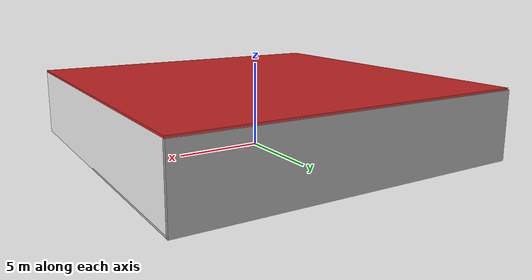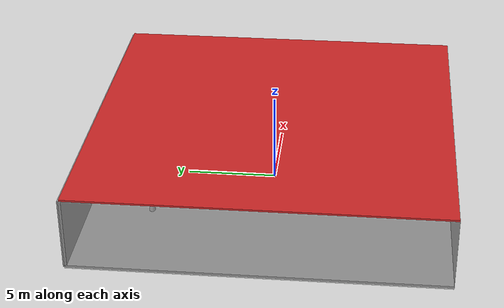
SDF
<sdf version="1.4">
 <world name="default">
  <physics type="ode">
   <max_step_size>0.001</max_step_size>
   <real_time_factor>1</real_time_factor>
   <real_time_update_rate>1000</real_time_update_rate>
   <gravity>0 0 -9.8</gravity>
  </physics>
  <scene><ambient>0.4 0.4 0.4 1</ambient><background>0.7 0.7 0.7 1</background><shadows>1</shadows></scene>
  <model name="Surrounding">
   <static>1</static>
   <link name="Ceiling">
    <collision name="Ceiling_Collision"><geometry><box><size>20 20 0.1</size></box></geometry></collision>
    <visual name="Ceiling_Visual">
     <geometry><box><size>20 20 0.1</size></box></geometry>
     <material>
      <script><uri>file://media/materials/scripts/gazebo.material</uri><name>Gazebo/Red</name></script>
     </material>
    </visual>
    <pose>0 0 4.05 0 0 0</pose>
   </link>
   <link name="Wall_South">
    <collision name="Wall_South_Collision">
     <geometry><box><size>20 0 4</size></box></geometry>
     <pose>0 0 2 0 -0 0</pose>
    </collision>
    <visual name="Wall_South_Visual">
     <pose>0 0 2 0 -0 0</pose>
     <geometry><box><size>20 0 4</size></box></geometry>
     <material>
      <script><uri>file://media/materials/scripts/gazebo.material</uri><name>Gazebo/PioneerBody</name></script>
     </material>
    </visual>
    <velocity_decay><linear>0</linear><angular>0</angular></velocity_decay>
    <pose>0 -10 0 0 -0 0</pose>
   </link>
   <link name="Wall_East">
    <collision name="Wall_21_Collision">
     <geometry><box><size>20 0 4</size></box></geometry>
     <pose>0 0 2 0 -0 0</pose>
    </collision>
    <visual name="Wall_21_Visual">
     <pose>0 0 2 0 -0 0</pose>
     <geometry><box><size>20 0 4</size></box></geometry>
     <material>
      <script><uri>file://media/materials/scripts/gazebo.material</uri><name>Gazebo/WhiteGlow</name></script>
     </material>
    </visual>
    <velocity_decay><linear>0</linear><angular>0</angular></velocity_decay>
    <pose>10 0 0 0 -0 1.5708</pose>
   </link>
   <link name="Wall_North">
    <collision name="Wall_22_Collision">
     <geometry><box><size>20 0.2 4</size></box></geometry>
     <pose>0 0 2 0 -0 0</pose>
    </collision>
    <visual name="Wall_22_Visual">
     <pose>0 0 2 0 -0 0</pose>
     <geometry><box><size>20 0.2 4</size></box></geometry>
     <material>
      <script><uri>file://media/materials/scripts/gazebo.material</uri><name>Gazebo/Grey</name></script>
     </material>
    </visual>
    <velocity_decay><linear>0</linear><angular>0</angular></velocity_decay>
    <pose>0 10 0 0 -0 0</pose>
   </link>
   <link name="Wall_West">
    <collision name="Wall_23_Collision">
     <geometry><box><size>20 0.2 4</size></box></geometry>
     <pose>0 0 2 0 -0 0</pose>
    </collision>
    <visual name="Wall_23_Visual">
     <pose>0 0 2 0 -0 0</pose>
     <geometry><box><size>20 0.2 4</size></box></geometry>
     <material>
      <script><uri>file://media/materials/scripts/gazebo.material</uri><name>Gazebo/GreyTransparent</name></script>
     </material>
    </visual>
    <velocity_decay><linear>0</linear><angular>0</angular></velocity_decay>
    <pose>-10 0 0 0 0 -1.5708</pose>
   </link>
   <link name="Ground_link">
    <collision name="collision">
     <pose>0 0 .05 0 -0 0</pose>
     <geometry><box><size>20 20 0.1</size></box></geometry>
    </collision>
    <visual name="visual">
     <pose>0 0 .05 0 -0 0</pose>
     <geometry><box><size>20 20 0.1</size></box></geometry>
     <material>
      <script><uri>file://media/materials/scripts/gazebo.material</uri><name>Gazebo/PioneerBody</name></script>
     </material>
    </visual>
   </link>
   <static>1</static>
  </model>
  <spherical_coordinates>
   <surface_model>EARTH_WGS84</surface_model>
   <latitude_deg>0</latitude_deg>
   <longitude_deg>0</longitude_deg>
   <elevation>0</elevation>
   <heading_deg>0</heading_deg>
  </spherical_coordinates>
  <light name="lightball_0" type="diffuse">
   <diffuse>0.8 0.8 0.8 1</diffuse>
   <specular>0.2 0.2 0.2 1</specular>
   <attenuation>
    <range>100</range>
    <constant>0.7</constant>
    <linear>0.01</linear>
    <quadratic>0.001</quadratic>
   </attenuation>
   <direction>-0.5 0.1 -0.9</direction>
   <pose>-4.84863383443 -3.14383304733 3.62752129618 0 0 0</pose>
  </light>
  <light name="lightball_1" type="diffuse">
   <diffuse>0.8 0.8 0.8 1</diffuse>
   <specular>0.2 0.2 0.2 1</specular>
   <attenuation>
    <range>100</range>
    <constant>0.7</constant>
    <linear>0.01</linear>
    <quadratic>0.001</quadratic>
   </attenuation>
   <direction>-0.5 0.1 -0.9</direction>
   <pose>1.81046535225 -4.27649122936 3.14671038691 0 0 0</pose>
  </light>
  <light name="lightball_2" type="diffuse">
   <diffuse>0.8 0.8 0.8 1</diffuse>
   <specular>0.2 0.2 0.2 1</specular>
   <attenuation>
    <range>100</range>
    <constant>0.7</constant>
    <linear>0.01</linear>
    <quadratic>0.001</quadratic>
   </attenuation>
   <direction>-0.5 0.1 -0.9</direction>
   <pose>-0.644840490745 -9.23879488313 3.78253925402 0 0 0</pose>
  </light>
  <light name="lightball_3" type="diffuse">
   <diffuse>0.8 0.8 0.8 1</diffuse>
   <specular>0.2 0.2 0.2 1</specular>
   <attenuation>
    <range>100</range>
    <constant>0.7</constant>
    <linear>0.01</linear>
    <quadratic>0.001</quadratic>
   </attenuation>
   <direction>-0.5 0.1 -0.9</direction>
   <pose>6.60286401535 -3.81858660485 1.5987747214 0 0 0</pose>
  </light>
  <light name="lightball_4" type="diffuse">
   <diffuse>0.8 0.8 0.8 1</diffuse>
   <specular>0.2 0.2 0.2 1</specular>
   <attenuation>
    <range>100</range>
    <constant>0.7</constant>
    <linear>0.01</linear>
    <quadratic>0.001</quadratic>
   </attenuation>
   <direction>-0.5 0.1 -0.9</direction>
   <pose>-4.48472042271 -0.151958308089 3.03364091139 0 0 0</pose>
  </light>
  <light name="lightball_5" type="diffuse">
   <diffuse>0.8 0.8 0.8 1</diffuse>
   <specular>0.2 0.2 0.2 1</specular>
   <attenuation>
    <range>100</range>
    <constant>0.7</constant>
    <linear>0.01</linear>
    <quadratic>0.001</quadratic>
   </attenuation>
   <direction>-0.5 0.1 -0.9</direction>
   <pose>0.285181208203 8.08282110152 3.60542807016 0 0 0</pose>
  </light>
  <light name="lightball_6" type="diffuse">
   <diffuse>0.8 0.8 0.8 1</diffuse>
   <specular>0.2 0.2 0.2 1</specular>
   <attenuation>
    <range>100</range>
    <constant>0.7</constant>
    <linear>0.01</linear>
    <quadratic>0.001</quadratic>
   </attenuation>
   <direction>-0.5 0.1 -0.9</direction>
   <pose>3.45532674142 4.15218760553 0.995595973979 0 0 0</pose>
  </light>
  <light name="lightball_7" type="diffuse">
   <diffuse>0.8 0.8 0.8 1</diffuse>
   <specular>0.2 0.2 0.2 1</specular>
   <attenuation>
    <range>100</range>
    <constant>0.7</constant>
    <linear>0.01</linear>
    <quadratic>0.001</quadratic>
   </attenuation>
   <direction>-0.5 0.1 -0.9</direction>
   <pose>9.2925766268 -9.22850128831 3.43366715985 0 0 0</pose>
  </light>
  <light name="lightball_8" type="diffuse">
   <diffuse>0.8 0.8 0.8 1</diffuse>
   <specular>0.2 0.2 0.2 1</specular>
   <attenuation>
    <range>100</range>
    <constant>0.7</constant>
    <linear>0.01</linear>
    <quadratic>0.001</quadratic>
   </attenuation>
   <direction>-0.5 0.1 -0.9</direction>
   <pose>3.73458847782 9.78108026374 1.65768630191 0 0 0</pose>
  </light>
  <light name="lightball_9" type="diffuse">
   <diffuse>0.8 0.8 0.8 1</diffuse>
   <specular>0.2 0.2 0.2 1</specular>
   <attenuation>
    <range>100</range>
    <constant>0.7</constant>
    <linear>0.01</linear>
    <quadratic>0.001</quadratic>
   </attenuation>
   <direction>-0.5 0.1 -0.9</direction>
   <pose>0.910654305916 5.00832972308 1.99133416522 0 0 0</pose>
  </light>
  <light name="lightball_10" type="diffuse">
   <diffuse>0.8 0.8 0.8 1</diffuse>
   <specular>0.2 0.2 0.2 1</specular>
   <attenuation>
    <range>100</range>
    <constant>0.7</constant>
    <linear>0.01</linear>
    <quadratic>0.001</quadratic>
   </attenuation>
   <direction>-0.5 0.1 -0.9</direction>
   <pose>6.42941914402 -9.27077912173 3.58886697652 0 0 0</pose>
  </light>
  <include>
   <uri>model://construction_cone</uri>
   <pose>-4.39461740813 6.42306512165 0 0 0 1.97440966386</pose>
  </include>
  <include><uri>model://cabinet</uri><pose>4.85455530368 7.0430412981 0 0 0 0.296456195759</pose></include>
  <include><uri>model://cabinet</uri><pose>7.85124649658 -1.16731443764 0 0 0 2.21327410953</pose></include>
 </world>
</sdf>

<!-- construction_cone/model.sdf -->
<sdf version="1.5">
  <model name="Construction Cone">
    <link name="link">
      <collision name="collision">
        <geometry>
          <mesh>
            <scale>10 10 10</scale>
            <uri>file://isr-testbed/construction_cone/meshes/construction_cone.dae</uri>
          </mesh>
        </geometry>
      </collision>
      <visual name="visual">
        <geometry>
          <mesh>
            <scale>10 10 10</scale>
            <uri>file://isr-testbed/construction_cone/meshes/construction_cone.dae</uri>
          </mesh>
        </geometry>
      </visual>
    </link>
  </model>
</sdf>

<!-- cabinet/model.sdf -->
<sdf version="1.5">
  <model name="cabinet">
    <static>true</static>
    <link name="cabinet_bottom_plate">
      <inertial>
        <pose>0 0 -1 0 0 0</pose>
        <inertia>
          <ixx>2.050000</ixx>
          <ixy>0</ixy>
          <ixz>0</ixz>
          <iyy>2.050000</iyy>
          <iyz>0</iyz>
          <izz>2.050000</izz>
        </inertia>
        <mass>25.000000</mass>
      </inertial>
      <collision name="cabinet_bottom_plate_geom">
        <pose>0 0 0.010000 0 0 0</pose>
        <geometry>
          <box>
            <size>0.450000 0.450000 0.020000</size>
          </box>
        </geometry>
      </collision>
      <visual name="cabinet_bottom_plate_geom_visual">
        <pose>0 0 0.010000 0 0 0</pose>
        <geometry>
          <box>
            <size>0.450000 0.450000 0.020000</size>
          </box>
        </geometry>
        <material>
          <script>
            <uri>model://media/materials/scripts/gazebo.material</uri>
            <name>Gazebo/Wood</name>
          </script>
        </material>
      </visual>
      <collision name="cabinet_bottom_plate_geom_cabinet_back_plate">
        <pose>0.235000 0 0.510000 0 0 0</pose>
        <geometry>
          <box>
            <size>0.020000 0.450000 1.020000</size>
          </box>
        </geometry>
      </collision>
      <visual name="cabinet_bottom_plate_geom_cabinet_back_plate_visual">
        <pose>0.235000 0 0.510000 0 0 0</pose>
        <geometry>
          <box>
            <size>0.020000 0.450000 1.020000</size>
          </box>
        </geometry>
        <material>
          <script>
            <uri>model://media/materials/scripts/gazebo.material</uri>
            <name>Gazebo/Wood</name>
          </script>
        </material>
      </visual>
      <collision name="cabinet_bottom_plate_geom_cabinet_left_plate">
        <pose>0 0.235000 0.510000 0 0 0</pose>
        <geometry>
          <box>
            <size>0.450000 0.020000 1.020000</size>
          </box>
        </geometry>
      </collision>
      <visual name="cabinet_bottom_plate_geom_cabinet_left_plate_visual">
        <pose>0 0.235000 0.510000 0 0 0</pose>
        <geometry>
          <box>
            <size>0.450000 0.020000 1.020000</size>
          </box>
        </geometry>
        <material>
          <script>
            <uri>model://media/materials/scripts/gazebo.material</uri>
            <name>Gazebo/Wood</name>
          </script>
        </material>
      </visual>
      <collision name="cabinet_bottom_plate_geom_cabinet_middle_plate">
        <pose>0 0 0.510000 0 0 0</pose>
        <geometry>
          <box>
            <size>0.450000 0.450000 0.020000</size>
          </box>
        </geometry>
      </collision>
      <visual name="cabinet_bottom_plate_geom_cabinet_middle_plate_visual">
        <pose>0 0 0.510000 0 0 0</pose>
        <geometry>
          <box>
            <size>0.450000 0.450000 0.020000</size>
          </box>
        </geometry>
        <material>
          <script>
            <uri>model://media/materials/scripts/gazebo.material</uri>
            <name>Gazebo/Wood</name>
          </script>
        </material>
      </visual>
      <collision name="cabinet_bottom_plate_geom_cabinet_right_plate">
        <pose>0 -0.235000 0.510000 0 0 0</pose>
        <geometry>
          <box>
            <size>0.450000 0.020000 1.020000</size>
          </box>
        </geometry>
      </collision>
      <visual name="cabinet_bottom_plate_geom_cabinet_right_plate_visual">
        <pose>0 -0.235000 0.510000 0 0 0</pose>
        <geometry>
          <box>
            <size>0.450000 0.020000 1.020000</size>
          </box>
        </geometry>
        <material>
          <script>
            <uri>model://media/materials/scripts/gazebo.material</uri>
            <name>Gazebo/Wood</name>
          </script>
        </material>
      </visual>
      <collision name="cabinet_bottom_plate_geom_cabinet_top_plate">
        <pose>0 0 1.010000 0 0 0</pose>
        <geometry>
          <box>
            <size>0.450000 0.450000 0.020000</size>
          </box>
        </geometry>
      </collision>
      <visual name="cabinet_bottom_plate_geom_cabinet_top_plate_visual">
        <pose>0 0 1.010000 0 0 0</pose>
        <geometry>
          <box>
            <size>0.450000 0.450000 0.020000</size>
          </box>
        </geometry>
        <material>
          <script>
            <uri>model://media/materials/scripts/gazebo.material</uri>
            <name>Gazebo/Wood</name>
          </script>
        </material>
      </visual>
    </link>
  </model>
</sdf>
